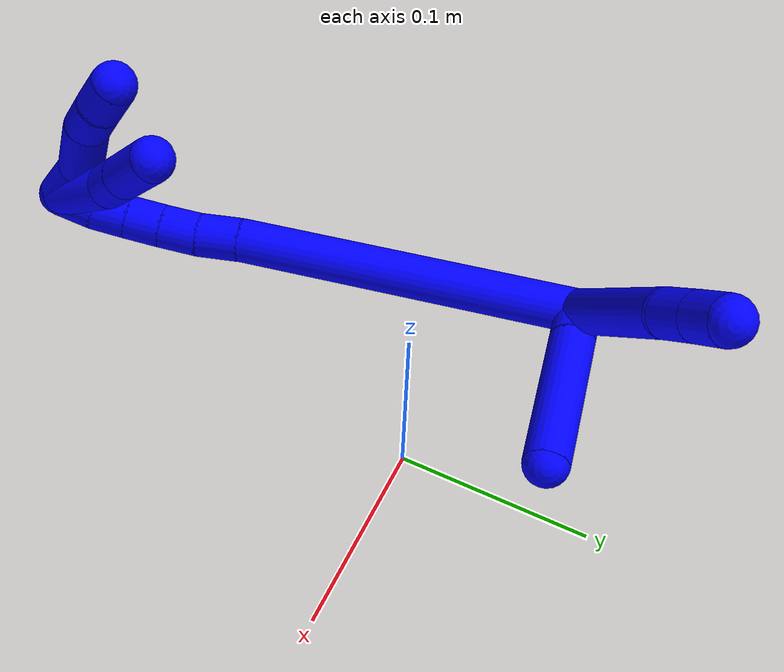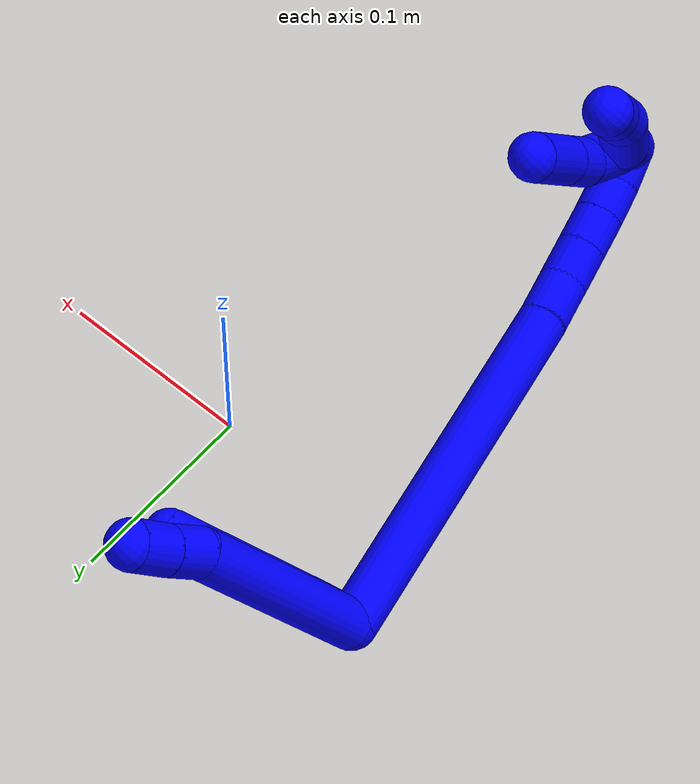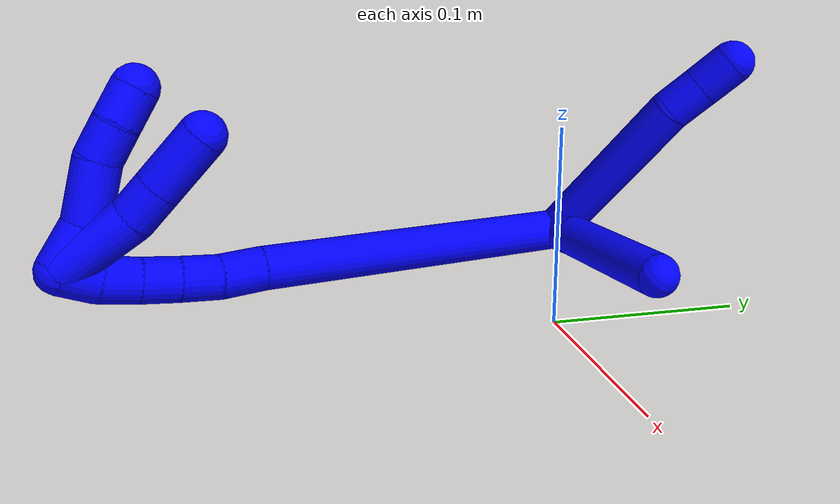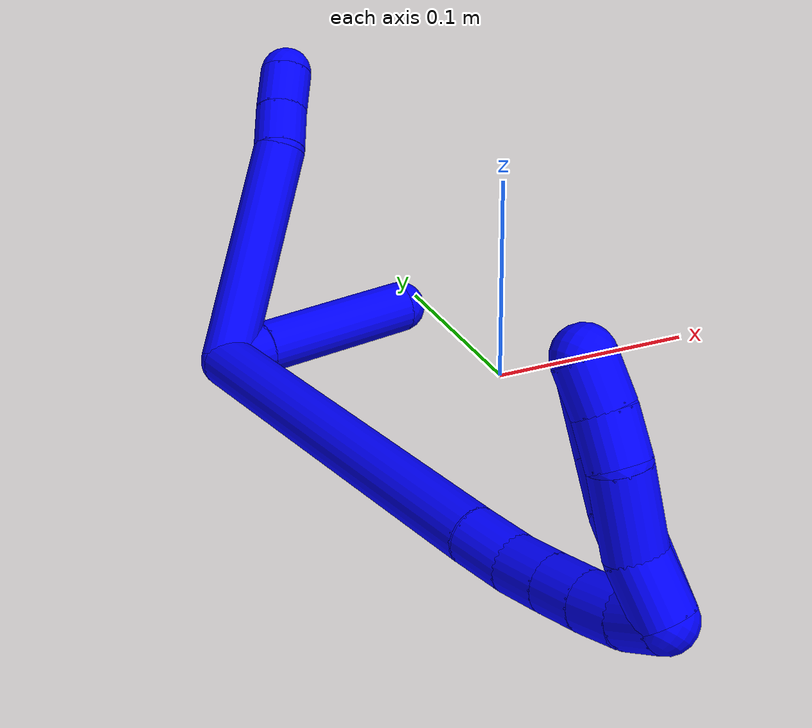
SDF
<sdf version="1.7">
 <world name="default">
  <model name="1">
   <static>0</static>
   <link name="1">
    <collision name="collision-cylinder-e_1_2_8">
     <pose>0.014424 0.001561 -0.051598 -3.11135 0.272464 -2.92186</pose>
     <geometry><cylinder><radius>0.0125</radius><length>0.107198</length></cylinder></geometry>
     <surface>
      <friction><ode><mu>1.16</mu><mu2>1.16</mu2><slip1>0</slip1><slip2>0</slip2></ode></friction>
      <contact><ode><kp>1e+06</kp><kd>1</kd><max_vel>0</max_vel><min_depth>0.001</min_depth></ode></contact>
     </surface>
    </collision>
    <visual name="visual-cylinder-e_1_2_8">
     <pose>0.014424 0.001561 -0.051598 -3.11135 0.272464 -2.92186</pose>
     <geometry><cylinder><radius>0.0125</radius><length>0.107198</length></cylinder></geometry>
     <material><ambient>0 0 1 1</ambient></material>
    </visual>
    <collision name="collision-cylinder-e_2_8_9">
     <pose>0.033434 0.005569 -0.112591 -2.88679 0.441342 -2.10391</pose>
     <geometry><cylinder><radius>0.0125</radius><length>0.021474</length></cylinder></geometry>
     <surface>
      <friction><ode><mu>1.16</mu><mu2>1.16</mu2><slip1>0</slip1><slip2>0</slip2></ode></friction>
      <contact><ode><kp>1e+06</kp><kd>1</kd><max_vel>0</max_vel><min_depth>0.001</min_depth></ode></contact>
     </surface>
    </collision>
    <visual name="visual-cylinder-e_2_8_9">
     <pose>0.033434 0.005569 -0.112591 -2.88679 0.441342 -2.10391</pose>
     <geometry><cylinder><radius>0.0125</radius><length>0.021474</length></cylinder></geometry>
     <material><ambient>0 0 1 1</ambient></material>
    </visual>
    <collision name="collision-cylinder-e_3_9_6">
     <pose>0.042074 0.010222 -0.1316 -2.91602 0.38991 -2.10003</pose>
     <geometry><cylinder><radius>0.0125</radius><length>0.021328</length></cylinder></geometry>
     <surface>
      <friction><ode><mu>1.16</mu><mu2>1.16</mu2><slip1>0</slip1><slip2>0</slip2></ode></friction>
      <contact><ode><kp>1e+06</kp><kd>1</kd><max_vel>0</max_vel><min_depth>0.001</min_depth></ode></contact>
     </surface>
    </collision>
    <visual name="visual-cylinder-e_3_9_6">
     <pose>0.042074 0.010222 -0.1316 -2.91602 0.38991 -2.10003</pose>
     <geometry><cylinder><radius>0.0125</radius><length>0.021328</length></cylinder></geometry>
     <material><ambient>0 0 1 1</ambient></material>
    </visual>
    <collision name="collision-cylinder-e_1_2_10">
     <pose>-0.005672 0.003988 -0.00741 -2.64785 -0.593125 1.76233</pose>
     <geometry><cylinder><radius>0.0125</radius><length>0.020296</length></cylinder></geometry>
     <surface>
      <friction><ode><mu>1.16</mu><mu2>1.16</mu2><slip1>0</slip1><slip2>0</slip2></ode></friction>
      <contact><ode><kp>1e+06</kp><kd>1</kd><max_vel>0</max_vel><min_depth>0.001</min_depth></ode></contact>
     </surface>
    </collision>
    <visual name="visual-cylinder-e_1_2_10">
     <pose>-0.005672 0.003988 -0.00741 -2.64785 -0.593125 1.76233</pose>
     <geometry><cylinder><radius>0.0125</radius><length>0.020296</length></cylinder></geometry>
     <material><ambient>0 0 1 1</ambient></material>
    </visual>
    <collision name="collision-cylinder-e_2_10_5">
     <pose>-0.034658 0.024854 -0.042384 -2.59218 -0.624894 1.7068</pose>
     <geometry><cylinder><radius>0.0125</radius><length>0.079704</length></cylinder></geometry>
     <surface>
      <friction><ode><mu>1.16</mu><mu2>1.16</mu2><slip1>0</slip1><slip2>0</slip2></ode></friction>
      <contact><ode><kp>1e+06</kp><kd>1</kd><max_vel>0</max_vel><min_depth>0.001</min_depth></ode></contact>
     </surface>
    </collision>
    <visual name="visual-cylinder-e_2_10_5">
     <pose>-0.034658 0.024854 -0.042384 -2.59218 -0.624894 1.7068</pose>
     <geometry><cylinder><radius>0.0125</radius><length>0.079704</length></cylinder></geometry>
     <material><ambient>0 0 1 1</ambient></material>
    </visual>
    <collision name="collision-cylinder-e_1_2_11">
     <pose>-0.066949 -0.067949 0.014969 1.35397 -0.766139 -0.626411</pose>
     <geometry><cylinder><radius>0.0125</radius><length>0.193115</length></cylinder></geometry>
     <surface>
      <friction><ode><mu>1.16</mu><mu2>1.16</mu2><slip1>0</slip1><slip2>0</slip2></ode></friction>
      <contact><ode><kp>1e+06</kp><kd>1</kd><max_vel>0</max_vel><min_depth>0.001</min_depth></ode></contact>
     </surface>
    </collision>
    <visual name="visual-cylinder-e_1_2_11">
     <pose>-0.066949 -0.067949 0.014969 1.35397 -0.766139 -0.626411</pose>
     <geometry><cylinder><radius>0.0125</radius><length>0.193115</length></cylinder></geometry>
     <material><ambient>0 0 1 1</ambient></material>
    </visual>
    <collision name="collision-cylinder-e_2_11_12">
     <pose>-0.143167 -0.143906 0.031585 1.36789 -0.848059 -0.705235</pose>
     <geometry><cylinder><radius>0.0125</radius><length>0.024719</length></cylinder></geometry>
     <surface>
      <friction><ode><mu>1.16</mu><mu2>1.16</mu2><slip1>0</slip1><slip2>0</slip2></ode></friction>
      <contact><ode><kp>1e+06</kp><kd>1</kd><max_vel>0</max_vel><min_depth>0.001</min_depth></ode></contact>
     </surface>
    </collision>
    <visual name="visual-cylinder-e_2_11_12">
     <pose>-0.143167 -0.143906 0.031585 1.36789 -0.848059 -0.705235</pose>
     <geometry><cylinder><radius>0.0125</radius><length>0.024719</length></cylinder></geometry>
     <material><ambient>0 0 1 1</ambient></material>
    </visual>
    <collision name="collision-cylinder-e_3_12_13">
     <pose>-0.159773 -0.159917 0.033862 1.49225 -0.740379 -0.688873</pose>
     <geometry><cylinder><radius>0.0125</radius><length>0.021751</length></cylinder></geometry>
     <surface>
      <friction><ode><mu>1.16</mu><mu2>1.16</mu2><slip1>0</slip1><slip2>0</slip2></ode></friction>
      <contact><ode><kp>1e+06</kp><kd>1</kd><max_vel>0</max_vel><min_depth>0.001</min_depth></ode></contact>
     </surface>
    </collision>
    <visual name="visual-cylinder-e_3_12_13">
     <pose>-0.159773 -0.159917 0.033862 1.49225 -0.740379 -0.688873</pose>
     <geometry><cylinder><radius>0.0125</radius><length>0.021751</length></cylinder></geometry>
     <material><ambient>0 0 1 1</ambient></material>
    </visual>
    <collision name="collision-cylinder-e_4_13_14">
     <pose>-0.173798 -0.175604 0.034896 1.51832 -0.715638 -0.68187</pose>
     <geometry><cylinder><radius>0.0125</radius><length>0.020388</length></cylinder></geometry>
     <surface>
      <friction><ode><mu>1.16</mu><mu2>1.16</mu2><slip1>0</slip1><slip2>0</slip2></ode></friction>
      <contact><ode><kp>1e+06</kp><kd>1</kd><max_vel>0</max_vel><min_depth>0.001</min_depth></ode></contact>
     </surface>
    </collision>
    <visual name="visual-cylinder-e_4_13_14">
     <pose>-0.173798 -0.175604 0.034896 1.51832 -0.715638 -0.68187</pose>
     <geometry><cylinder><radius>0.0125</radius><length>0.020388</length></cylinder></geometry>
     <material><ambient>0 0 1 1</ambient></material>
    </visual>
    <collision name="collision-cylinder-e_5_14_15">
     <pose>-0.186888 -0.190977 0.035184 1.58576 -0.694134 -0.703762</pose>
     <geometry><cylinder><radius>0.0125</radius><length>0.020015</length></cylinder></geometry>
     <surface>
      <friction><ode><mu>1.16</mu><mu2>1.16</mu2><slip1>0</slip1><slip2>0</slip2></ode></friction>
      <contact><ode><kp>1e+06</kp><kd>1</kd><max_vel>0</max_vel><min_depth>0.001</min_depth></ode></contact>
     </surface>
    </collision>
    <visual name="visual-cylinder-e_5_14_15">
     <pose>-0.186888 -0.190977 0.035184 1.58576 -0.694134 -0.703762</pose>
     <geometry><cylinder><radius>0.0125</radius><length>0.020015</length></cylinder></geometry>
     <material><ambient>0 0 1 1</ambient></material>
    </visual>
    <collision name="collision-cylinder-e_6_15_1">
     <pose>-0.198378 -0.207078 0.033196 1.78996 -0.533411 -0.656852</pose>
     <geometry><cylinder><radius>0.0125</radius><length>0.020012</length></cylinder></geometry>
     <surface>
      <friction><ode><mu>1.16</mu><mu2>1.16</mu2><slip1>0</slip1><slip2>0</slip2></ode></friction>
      <contact><ode><kp>1e+06</kp><kd>1</kd><max_vel>0</max_vel><min_depth>0.001</min_depth></ode></contact>
     </surface>
    </collision>
    <visual name="visual-cylinder-e_6_15_1">
     <pose>-0.198378 -0.207078 0.033196 1.78996 -0.533411 -0.656852</pose>
     <geometry><cylinder><radius>0.0125</radius><length>0.020012</length></cylinder></geometry>
     <material><ambient>0 0 1 1</ambient></material>
    </visual>
    <collision name="collision-cylinder-e_1_1_16">
     <pose>-0.193156 -0.217141 0.023656 2.92923 0.920452 2.71804</pose>
     <geometry><cylinder><radius>0.0125</radius><length>0.025907</length></cylinder></geometry>
     <surface>
      <friction><ode><mu>1.16</mu><mu2>1.16</mu2><slip1>0</slip1><slip2>0</slip2></ode></friction>
      <contact><ode><kp>1e+06</kp><kd>1</kd><max_vel>0</max_vel><min_depth>0.001</min_depth></ode></contact>
     </surface>
    </collision>
    <visual name="visual-cylinder-e_1_1_16">
     <pose>-0.193156 -0.217141 0.023656 2.92923 0.920452 2.71804</pose>
     <geometry><cylinder><radius>0.0125</radius><length>0.025907</length></cylinder></geometry>
     <material><ambient>0 0 1 1</ambient></material>
    </visual>
    <collision name="collision-cylinder-e_2_16_17">
     <pose>-0.172431 -0.225488 0.004467 2.61531 0.663428 1.81413</pose>
     <geometry><cylinder><radius>0.0125</radius><length>0.033827</length></cylinder></geometry>
     <surface>
      <friction><ode><mu>1.16</mu><mu2>1.16</mu2><slip1>0</slip1><slip2>0</slip2></ode></friction>
      <contact><ode><kp>1e+06</kp><kd>1</kd><max_vel>0</max_vel><min_depth>0.001</min_depth></ode></contact>
     </surface>
    </collision>
    <visual name="visual-cylinder-e_2_16_17">
     <pose>-0.172431 -0.225488 0.004467 2.61531 0.663428 1.81413</pose>
     <geometry><cylinder><radius>0.0125</radius><length>0.033827</length></cylinder></geometry>
     <material><ambient>0 0 1 1</ambient></material>
    </visual>
    <collision name="collision-cylinder-e_3_17_18">
     <pose>-0.15506 -0.233503 -0.014211 2.95898 0.762887 2.69272</pose>
     <geometry><cylinder><radius>0.0125</radius><length>0.020131</length></cylinder></geometry>
     <surface>
      <friction><ode><mu>1.16</mu><mu2>1.16</mu2><slip1>0</slip1><slip2>0</slip2></ode></friction>
      <contact><ode><kp>1e+06</kp><kd>1</kd><max_vel>0</max_vel><min_depth>0.001</min_depth></ode></contact>
     </surface>
    </collision>
    <visual name="visual-cylinder-e_3_17_18">
     <pose>-0.15506 -0.233503 -0.014211 2.95898 0.762887 2.69272</pose>
     <geometry><cylinder><radius>0.0125</radius><length>0.020131</length></cylinder></geometry>
     <material><ambient>0 0 1 1</ambient></material>
    </visual>
    <collision name="collision-cylinder-e_4_18_4">
     <pose>-0.140453 -0.236331 -0.027732 2.90927 0.863397 2.64544</pose>
     <geometry><cylinder><radius>0.0125</radius><length>0.020135</length></cylinder></geometry>
     <surface>
      <friction><ode><mu>1.16</mu><mu2>1.16</mu2><slip1>0</slip1><slip2>0</slip2></ode></friction>
      <contact><ode><kp>1e+06</kp><kd>1</kd><max_vel>0</max_vel><min_depth>0.001</min_depth></ode></contact>
     </surface>
    </collision>
    <visual name="visual-cylinder-e_4_18_4">
     <pose>-0.140453 -0.236331 -0.027732 2.90927 0.863397 2.64544</pose>
     <geometry><cylinder><radius>0.0125</radius><length>0.020135</length></cylinder></geometry>
     <material><ambient>0 0 1 1</ambient></material>
    </visual>
    <collision name="collision-cylinder-e_1_1_19">
     <pose>-0.188243 -0.208405 0.016514 -2.69549 0.747703 -2.09313</pose>
     <geometry><cylinder><radius>0.0125</radius><length>0.044775</length></cylinder></geometry>
     <surface>
      <friction><ode><mu>1.16</mu><mu2>1.16</mu2><slip1>0</slip1><slip2>0</slip2></ode></friction>
      <contact><ode><kp>1e+06</kp><kd>1</kd><max_vel>0</max_vel><min_depth>0.001</min_depth></ode></contact>
     </surface>
    </collision>
    <visual name="visual-cylinder-e_1_1_19">
     <pose>-0.188243 -0.208405 0.016514 -2.69549 0.747703 -2.09313</pose>
     <geometry><cylinder><radius>0.0125</radius><length>0.044775</length></cylinder></geometry>
     <material><ambient>0 0 1 1</ambient></material>
    </visual>
    <collision name="collision-cylinder-e_2_19_20">
     <pose>-0.166453 -0.200247 -0.006152 -3.00549 0.691721 -2.76771</pose>
     <geometry><cylinder><radius>0.0125</radius><length>0.020592</length></cylinder></geometry>
     <surface>
      <friction><ode><mu>1.16</mu><mu2>1.16</mu2><slip1>0</slip1><slip2>0</slip2></ode></friction>
      <contact><ode><kp>1e+06</kp><kd>1</kd><max_vel>0</max_vel><min_depth>0.001</min_depth></ode></contact>
     </surface>
    </collision>
    <visual name="visual-cylinder-e_2_19_20">
     <pose>-0.166453 -0.200247 -0.006152 -3.00549 0.691721 -2.76771</pose>
     <geometry><cylinder><radius>0.0125</radius><length>0.020592</length></cylinder></geometry>
     <material><ambient>0 0 1 1</ambient></material>
    </visual>
    <collision name="collision-cylinder-e_3_20_3">
     <pose>-0.148874 -0.197371 -0.02725 -3.00648 0.68918 -2.76894</pose>
     <geometry><cylinder><radius>0.0125</radius><length>0.034633</length></cylinder></geometry>
     <surface>
      <friction><ode><mu>1.16</mu><mu2>1.16</mu2><slip1>0</slip1><slip2>0</slip2></ode></friction>
      <contact><ode><kp>1e+06</kp><kd>1</kd><max_vel>0</max_vel><min_depth>0.001</min_depth></ode></contact>
     </surface>
    </collision>
    <visual name="visual-cylinder-e_3_20_3">
     <pose>-0.148874 -0.197371 -0.02725 -3.00648 0.68918 -2.76894</pose>
     <geometry><cylinder><radius>0.0125</radius><length>0.034633</length></cylinder></geometry>
     <material><ambient>0 0 1 1</ambient></material>
    </visual>
    <collision name="collision-sphere-3">
     <pose>-0.137862 -0.19557 -0.040493 0 -0 0</pose>
     <geometry><sphere><radius>0.0125</radius></sphere></geometry>
     <surface>
      <friction><ode><mu>1.16</mu><mu2>1.16</mu2><slip1>0</slip1><slip2>0</slip2></ode></friction>
      <contact><ode><kp>1e+06</kp><kd>1</kd><max_vel>0</max_vel><min_depth>0.001</min_depth></ode></contact>
     </surface>
    </collision>
    <visual name="visual-sphere-3">
     <pose>-0.137862 -0.19557 -0.040493 0 -0 0</pose>
     <geometry><sphere><radius>0.0125</radius></sphere></geometry>
     <material><ambient>0 0 1 1</ambient></material>
    </visual>
    <collision name="collision-sphere-20">
     <pose>-0.159886 -0.199171 -0.014008 0 -0 0</pose>
     <geometry><sphere><radius>0.0125</radius></sphere></geometry>
     <surface>
      <friction><ode><mu>1.16</mu><mu2>1.16</mu2><slip1>0</slip1><slip2>0</slip2></ode></friction>
      <contact><ode><kp>1e+06</kp><kd>1</kd><max_vel>0</max_vel><min_depth>0.001</min_depth></ode></contact>
     </surface>
    </collision>
    <visual name="visual-sphere-20">
     <pose>-0.159886 -0.199171 -0.014008 0 -0 0</pose>
     <geometry><sphere><radius>0.0125</radius></sphere></geometry>
     <material><ambient>0 0 1 1</ambient></material>
    </visual>
    <collision name="collision-sphere-19">
     <pose>-0.173021 -0.201323 0.001705 0 -0 0</pose>
     <geometry><sphere><radius>0.0125</radius></sphere></geometry>
     <surface>
      <friction><ode><mu>1.16</mu><mu2>1.16</mu2><slip1>0</slip1><slip2>0</slip2></ode></friction>
      <contact><ode><kp>1e+06</kp><kd>1</kd><max_vel>0</max_vel><min_depth>0.001</min_depth></ode></contact>
     </surface>
    </collision>
    <visual name="visual-sphere-19">
     <pose>-0.173021 -0.201323 0.001705 0 -0 0</pose>
     <geometry><sphere><radius>0.0125</radius></sphere></geometry>
     <material><ambient>0 0 1 1</ambient></material>
    </visual>
    <collision name="collision-sphere-5">
     <pose>-0.057972 0.041731 -0.069948 0 -0 0</pose>
     <geometry><sphere><radius>0.0125</radius></sphere></geometry>
     <surface>
      <friction><ode><mu>1.16</mu><mu2>1.16</mu2><slip1>0</slip1><slip2>0</slip2></ode></friction>
      <contact><ode><kp>1e+06</kp><kd>1</kd><max_vel>0</max_vel><min_depth>0.001</min_depth></ode></contact>
     </surface>
    </collision>
    <visual name="visual-sphere-5">
     <pose>-0.057972 0.041731 -0.069948 0 -0 0</pose>
     <geometry><sphere><radius>0.0125</radius></sphere></geometry>
     <material><ambient>0 0 1 1</ambient></material>
    </visual>
    <collision name="collision-sphere-10">
     <pose>-0.011345 0.007976 -0.01482 0 -0 0</pose>
     <geometry><sphere><radius>0.0125</radius></sphere></geometry>
     <surface>
      <friction><ode><mu>1.16</mu><mu2>1.16</mu2><slip1>0</slip1><slip2>0</slip2></ode></friction>
      <contact><ode><kp>1e+06</kp><kd>1</kd><max_vel>0</max_vel><min_depth>0.001</min_depth></ode></contact>
     </surface>
    </collision>
    <visual name="visual-sphere-10">
     <pose>-0.011345 0.007976 -0.01482 0 -0 0</pose>
     <geometry><sphere><radius>0.0125</radius></sphere></geometry>
     <material><ambient>0 0 1 1</ambient></material>
    </visual>
    <collision name="collision-sphere-6">
     <pose>0.046127 0.012428 -0.141213 0 -0 0</pose>
     <geometry><sphere><radius>0.0125</radius></sphere></geometry>
     <surface>
      <friction><ode><mu>1.16</mu><mu2>1.16</mu2><slip1>0</slip1><slip2>0</slip2></ode></friction>
      <contact><ode><kp>1e+06</kp><kd>1</kd><max_vel>0</max_vel><min_depth>0.001</min_depth></ode></contact>
     </surface>
    </collision>
    <visual name="visual-sphere-6">
     <pose>0.046127 0.012428 -0.141213 0 -0 0</pose>
     <geometry><sphere><radius>0.0125</radius></sphere></geometry>
     <material><ambient>0 0 1 1</ambient></material>
    </visual>
    <collision name="collision-sphere-9">
     <pose>0.03802 0.008016 -0.121986 0 -0 0</pose>
     <geometry><sphere><radius>0.0125</radius></sphere></geometry>
     <surface>
      <friction><ode><mu>1.16</mu><mu2>1.16</mu2><slip1>0</slip1><slip2>0</slip2></ode></friction>
      <contact><ode><kp>1e+06</kp><kd>1</kd><max_vel>0</max_vel><min_depth>0.001</min_depth></ode></contact>
     </surface>
    </collision>
    <visual name="visual-sphere-9">
     <pose>0.03802 0.008016 -0.121986 0 -0 0</pose>
     <geometry><sphere><radius>0.0125</radius></sphere></geometry>
     <material><ambient>0 0 1 1</ambient></material>
    </visual>
    <collision name="collision-sphere-2">
     <geometry><sphere><radius>0.0125</radius></sphere></geometry>
     <surface>
      <friction><ode><mu>1.16</mu><mu2>1.16</mu2><slip1>0</slip1><slip2>0</slip2></ode></friction>
      <contact><ode><kp>1e+06</kp><kd>1</kd><max_vel>0</max_vel><min_depth>0.001</min_depth></ode></contact>
     </surface>
    </collision>
    <visual name="visual-sphere-2">
     <geometry><sphere><radius>0.0125</radius></sphere></geometry>
     <material><ambient>0 0 1 1</ambient></material>
    </visual>
    <collision name="collision-sphere-8">
     <pose>0.028848 0.003122 -0.103197 0 -0 0</pose>
     <geometry><sphere><radius>0.0125</radius></sphere></geometry>
     <surface>
      <friction><ode><mu>1.16</mu><mu2>1.16</mu2><slip1>0</slip1><slip2>0</slip2></ode></friction>
      <contact><ode><kp>1e+06</kp><kd>1</kd><max_vel>0</max_vel><min_depth>0.001</min_depth></ode></contact>
     </surface>
    </collision>
    <visual name="visual-sphere-8">
     <pose>0.028848 0.003122 -0.103197 0 -0 0</pose>
     <geometry><sphere><radius>0.0125</radius></sphere></geometry>
     <material><ambient>0 0 1 1</ambient></material>
    </visual>
    <collision name="collision-sphere-11">
     <pose>-0.133898 -0.135899 0.029938 0 -0 0</pose>
     <geometry><sphere><radius>0.0125</radius></sphere></geometry>
     <surface>
      <friction><ode><mu>1.16</mu><mu2>1.16</mu2><slip1>0</slip1><slip2>0</slip2></ode></friction>
      <contact><ode><kp>1e+06</kp><kd>1</kd><max_vel>0</max_vel><min_depth>0.001</min_depth></ode></contact>
     </surface>
    </collision>
    <visual name="visual-sphere-11">
     <pose>-0.133898 -0.135899 0.029938 0 -0 0</pose>
     <geometry><sphere><radius>0.0125</radius></sphere></geometry>
     <material><ambient>0 0 1 1</ambient></material>
    </visual>
    <collision name="collision-sphere-12">
     <pose>-0.152437 -0.151914 0.033232 0 -0 0</pose>
     <geometry><sphere><radius>0.0125</radius></sphere></geometry>
     <surface>
      <friction><ode><mu>1.16</mu><mu2>1.16</mu2><slip1>0</slip1><slip2>0</slip2></ode></friction>
      <contact><ode><kp>1e+06</kp><kd>1</kd><max_vel>0</max_vel><min_depth>0.001</min_depth></ode></contact>
     </surface>
    </collision>
    <visual name="visual-sphere-12">
     <pose>-0.152437 -0.151914 0.033232 0 -0 0</pose>
     <geometry><sphere><radius>0.0125</radius></sphere></geometry>
     <material><ambient>0 0 1 1</ambient></material>
    </visual>
    <collision name="collision-sphere-13">
     <pose>-0.167109 -0.167921 0.034492 0 -0 0</pose>
     <geometry><sphere><radius>0.0125</radius></sphere></geometry>
     <surface>
      <friction><ode><mu>1.16</mu><mu2>1.16</mu2><slip1>0</slip1><slip2>0</slip2></ode></friction>
      <contact><ode><kp>1e+06</kp><kd>1</kd><max_vel>0</max_vel><min_depth>0.001</min_depth></ode></contact>
     </surface>
    </collision>
    <visual name="visual-sphere-13">
     <pose>-0.167109 -0.167921 0.034492 0 -0 0</pose>
     <geometry><sphere><radius>0.0125</radius></sphere></geometry>
     <material><ambient>0 0 1 1</ambient></material>
    </visual>
    <collision name="collision-sphere-14">
     <pose>-0.180486 -0.183286 0.035299 0 -0 0</pose>
     <geometry><sphere><radius>0.0125</radius></sphere></geometry>
     <surface>
      <friction><ode><mu>1.16</mu><mu2>1.16</mu2><slip1>0</slip1><slip2>0</slip2></ode></friction>
      <contact><ode><kp>1e+06</kp><kd>1</kd><max_vel>0</max_vel><min_depth>0.001</min_depth></ode></contact>
     </surface>
    </collision>
    <visual name="visual-sphere-14">
     <pose>-0.180486 -0.183286 0.035299 0 -0 0</pose>
     <geometry><sphere><radius>0.0125</radius></sphere></geometry>
     <material><ambient>0 0 1 1</ambient></material>
    </visual>
    <collision name="collision-sphere-15">
     <pose>-0.19329 -0.198668 0.035069 0 -0 0</pose>
     <geometry><sphere><radius>0.0125</radius></sphere></geometry>
     <surface>
      <friction><ode><mu>1.16</mu><mu2>1.16</mu2><slip1>0</slip1><slip2>0</slip2></ode></friction>
      <contact><ode><kp>1e+06</kp><kd>1</kd><max_vel>0</max_vel><min_depth>0.001</min_depth></ode></contact>
     </surface>
    </collision>
    <visual name="visual-sphere-15">
     <pose>-0.19329 -0.198668 0.035069 0 -0 0</pose>
     <geometry><sphere><radius>0.0125</radius></sphere></geometry>
     <material><ambient>0 0 1 1</ambient></material>
    </visual>
    <collision name="collision-sphere-1">
     <pose>-0.203466 -0.215488 0.031323 0 -0 0</pose>
     <geometry><sphere><radius>0.0125</radius></sphere></geometry>
     <surface>
      <friction><ode><mu>1.16</mu><mu2>1.16</mu2><slip1>0</slip1><slip2>0</slip2></ode></friction>
      <contact><ode><kp>1e+06</kp><kd>1</kd><max_vel>0</max_vel><min_depth>0.001</min_depth></ode></contact>
     </surface>
    </collision>
    <visual name="visual-sphere-1">
     <pose>-0.203466 -0.215488 0.031323 0 -0 0</pose>
     <geometry><sphere><radius>0.0125</radius></sphere></geometry>
     <material><ambient>0 0 1 1</ambient></material>
    </visual>
    <collision name="collision-sphere-18">
     <pose>-0.148104 -0.234824 -0.021366 0 -0 0</pose>
     <geometry><sphere><radius>0.0125</radius></sphere></geometry>
     <surface>
      <friction><ode><mu>1.16</mu><mu2>1.16</mu2><slip1>0</slip1><slip2>0</slip2></ode></friction>
      <contact><ode><kp>1e+06</kp><kd>1</kd><max_vel>0</max_vel><min_depth>0.001</min_depth></ode></contact>
     </surface>
    </collision>
    <visual name="visual-sphere-18">
     <pose>-0.148104 -0.234824 -0.021366 0 -0 0</pose>
     <geometry><sphere><radius>0.0125</radius></sphere></geometry>
     <material><ambient>0 0 1 1</ambient></material>
    </visual>
    <collision name="collision-sphere-16">
     <pose>-0.182847 -0.218794 0.015989 0 -0 0</pose>
     <geometry><sphere><radius>0.0125</radius></sphere></geometry>
     <surface>
      <friction><ode><mu>1.16</mu><mu2>1.16</mu2><slip1>0</slip1><slip2>0</slip2></ode></friction>
      <contact><ode><kp>1e+06</kp><kd>1</kd><max_vel>0</max_vel><min_depth>0.001</min_depth></ode></contact>
     </surface>
    </collision>
    <visual name="visual-sphere-16">
     <pose>-0.182847 -0.218794 0.015989 0 -0 0</pose>
     <geometry><sphere><radius>0.0125</radius></sphere></geometry>
     <material><ambient>0 0 1 1</ambient></material>
    </visual>
    <collision name="collision-sphere-17">
     <pose>-0.162015 -0.232182 -0.007056 0 -0 0</pose>
     <geometry><sphere><radius>0.0125</radius></sphere></geometry>
     <surface>
      <friction><ode><mu>1.16</mu><mu2>1.16</mu2><slip1>0</slip1><slip2>0</slip2></ode></friction>
      <contact><ode><kp>1e+06</kp><kd>1</kd><max_vel>0</max_vel><min_depth>0.001</min_depth></ode></contact>
     </surface>
    </collision>
    <visual name="visual-sphere-17">
     <pose>-0.162015 -0.232182 -0.007056 0 -0 0</pose>
     <geometry><sphere><radius>0.0125</radius></sphere></geometry>
     <material><ambient>0 0 1 1</ambient></material>
    </visual>
    <collision name="collision-sphere-4">
     <pose>-0.132801 -0.237837 -0.034099 0 -0 0</pose>
     <geometry><sphere><radius>0.0125</radius></sphere></geometry>
     <surface>
      <friction><ode><mu>1.16</mu><mu2>1.16</mu2><slip1>0</slip1><slip2>0</slip2></ode></friction>
      <contact><ode><kp>1e+06</kp><kd>1</kd><max_vel>0</max_vel><min_depth>0.001</min_depth></ode></contact>
     </surface>
    </collision>
    <visual name="visual-sphere-4">
     <pose>-0.132801 -0.237837 -0.034099 0 -0 0</pose>
     <geometry><sphere><radius>0.0125</radius></sphere></geometry>
     <material><ambient>0 0 1 1</ambient></material>
    </visual>
    <inertial>
     <pose>-0.086282 -0.096187 -0.010944 0 -0 0</pose>
     <mass>0.75</mass>
     <inertia>
      <ixx>-1.6e-05</ixx>
      <ixy>0</ixy>
      <ixz>0</ixz>
      <iyy>0.000233</iyy>
      <iyz>0</iyz>
      <izz>0.000791</izz>
     </inertia>
    </inertial>
   </link>
   <pose>-0.120762 0.048501 0.011471 -2.45184 -0.436077 2.46827</pose>
  </model>
 </world>
</sdf>
